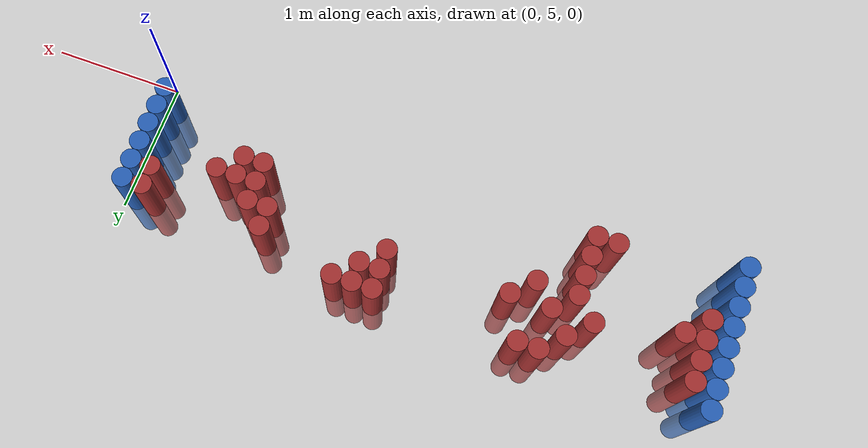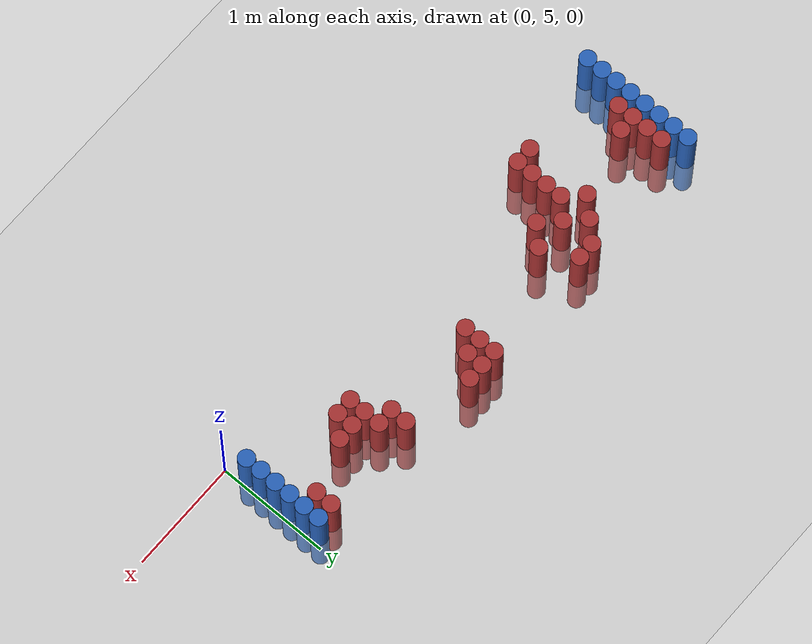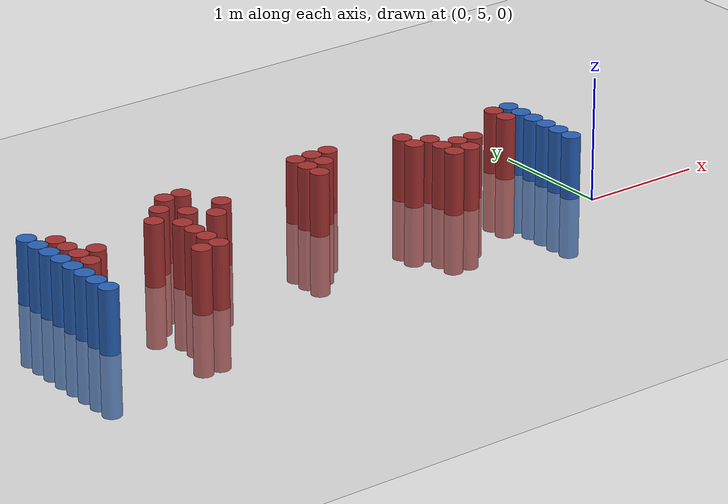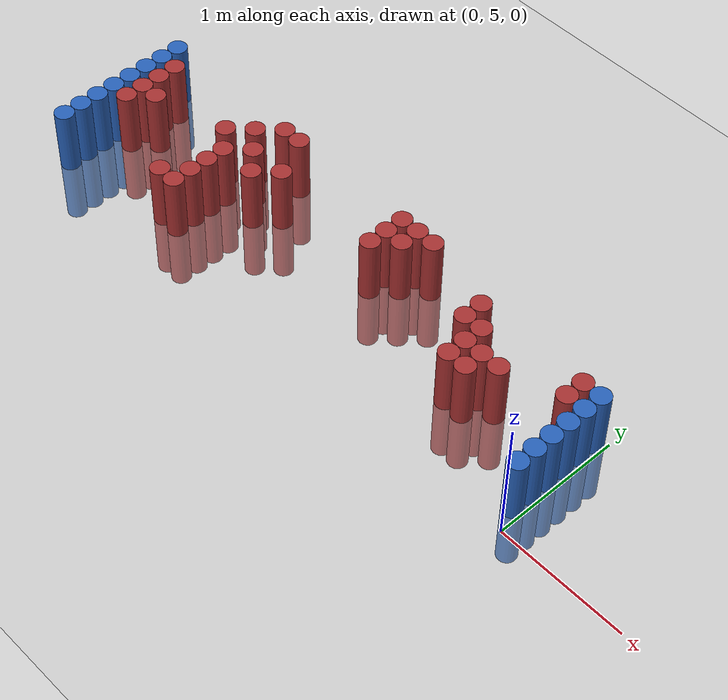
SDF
<sdf version="1.6">
 <world name="default">
  <model name="ground_plane">
   <static>1</static>
   <link name="link">
    <collision name="collision">
     <geometry><plane><normal>0 0 1</normal><size>100 100</size></plane></geometry>
     <surface><friction><ode><mu>100</mu><mu2>50</mu2></ode></friction></surface>
    </collision>
    <visual name="visual">
     <cast_shadows>0</cast_shadows>
     <geometry><plane><normal>0 0 1</normal><size>100 100</size></plane></geometry>
     <material>
      <script><uri>file://media/materials/scripts/gazebo.material</uri><name>Gazebo/Grey</name></script>
     </material>
    </visual>
   </link>
  </model>
  <model name="unit_cylinder_95">
   <static>1</static>
   <pose>-4.425000 5.025000 0.000000 0.000000 0.000000 0.000000</pose>
   <link name="link">
    <inertial>
     <mass>1</mass>
     <inertia><ixx>0.145833</ixx><ixy>0</ixy><ixz>0</ixz><iyy>0.145833</iyy><iyz>0</iyz><izz>0.125</izz></inertia>
    </inertial>
    <collision name="collision">
     <geometry><cylinder><radius>0.075000</radius><length>1</length></cylinder></geometry>
    </collision>
    <visual name="visual">
     <geometry><cylinder><radius>0.075000</radius><length>1</length></cylinder></geometry>
     <material>
      <ambient>0.152000 0.379000 0.720000 1</ambient>
      <diffuse>0.152000 0.379000 0.720000 1</diffuse>
     </material>
     <material>
      <script><name>Gazebo/Grey</name><uri>file://media/materials/scripts/gazebo.material</uri></script>
     </material>
    </visual>
   </link>
  </model>
  <model name="unit_cylinder_96">
   <static>1</static>
   <pose>-4.425000 5.175000 0.000000 0.000000 0.000000 0.000000</pose>
   <link name="link">
    <inertial>
     <mass>1</mass>
     <inertia><ixx>0.145833</ixx><ixy>0</ixy><ixz>0</ixz><iyy>0.145833</iyy><iyz>0</iyz><izz>0.125</izz></inertia>
    </inertial>
    <collision name="collision">
     <geometry><cylinder><radius>0.075000</radius><length>1</length></cylinder></geometry>
    </collision>
    <visual name="visual">
     <geometry><cylinder><radius>0.075000</radius><length>1</length></cylinder></geometry>
     <material>
      <ambient>0.152000 0.379000 0.720000 1</ambient>
      <diffuse>0.152000 0.379000 0.720000 1</diffuse>
     </material>
     <material>
      <script><name>Gazebo/Grey</name><uri>file://media/materials/scripts/gazebo.material</uri></script>
     </material>
    </visual>
   </link>
  </model>
  <model name="unit_cylinder_97">
   <static>1</static>
   <pose>-4.425000 5.325000 0.000000 0.000000 0.000000 0.000000</pose>
   <link name="link">
    <inertial>
     <mass>1</mass>
     <inertia><ixx>0.145833</ixx><ixy>0</ixy><ixz>0</ixz><iyy>0.145833</iyy><iyz>0</iyz><izz>0.125</izz></inertia>
    </inertial>
    <collision name="collision">
     <geometry><cylinder><radius>0.075000</radius><length>1</length></cylinder></geometry>
    </collision>
    <visual name="visual">
     <geometry><cylinder><radius>0.075000</radius><length>1</length></cylinder></geometry>
     <material>
      <ambient>0.152000 0.379000 0.720000 1</ambient>
      <diffuse>0.152000 0.379000 0.720000 1</diffuse>
     </material>
     <material>
      <script><name>Gazebo/Grey</name><uri>file://media/materials/scripts/gazebo.material</uri></script>
     </material>
    </visual>
   </link>
  </model>
  <model name="unit_cylinder_98">
   <static>1</static>
   <pose>-4.425000 5.475000 0.000000 0.000000 0.000000 0.000000</pose>
   <link name="link">
    <inertial>
     <mass>1</mass>
     <inertia><ixx>0.145833</ixx><ixy>0</ixy><ixz>0</ixz><iyy>0.145833</iyy><iyz>0</iyz><izz>0.125</izz></inertia>
    </inertial>
    <collision name="collision">
     <geometry><cylinder><radius>0.075000</radius><length>1</length></cylinder></geometry>
    </collision>
    <visual name="visual">
     <geometry><cylinder><radius>0.075000</radius><length>1</length></cylinder></geometry>
     <material>
      <ambient>0.152000 0.379000 0.720000 1</ambient>
      <diffuse>0.152000 0.379000 0.720000 1</diffuse>
     </material>
     <material>
      <script><name>Gazebo/Grey</name><uri>file://media/materials/scripts/gazebo.material</uri></script>
     </material>
    </visual>
   </link>
  </model>
  <model name="unit_cylinder_99">
   <static>1</static>
   <pose>-4.425000 5.625000 0.000000 0.000000 0.000000 0.000000</pose>
   <link name="link">
    <inertial>
     <mass>1</mass>
     <inertia><ixx>0.145833</ixx><ixy>0</ixy><ixz>0</ixz><iyy>0.145833</iyy><iyz>0</iyz><izz>0.125</izz></inertia>
    </inertial>
    <collision name="collision">
     <geometry><cylinder><radius>0.075000</radius><length>1</length></cylinder></geometry>
    </collision>
    <visual name="visual">
     <geometry><cylinder><radius>0.075000</radius><length>1</length></cylinder></geometry>
     <material>
      <ambient>0.152000 0.379000 0.720000 1</ambient>
      <diffuse>0.152000 0.379000 0.720000 1</diffuse>
     </material>
     <material>
      <script><name>Gazebo/Grey</name><uri>file://media/materials/scripts/gazebo.material</uri></script>
     </material>
    </visual>
   </link>
  </model>
  <model name="unit_cylinder_100">
   <static>1</static>
   <pose>-4.425000 5.775000 0.000000 0.000000 0.000000 0.000000</pose>
   <link name="link">
    <inertial>
     <mass>1</mass>
     <inertia><ixx>0.145833</ixx><ixy>0</ixy><ixz>0</ixz><iyy>0.145833</iyy><iyz>0</iyz><izz>0.125</izz></inertia>
    </inertial>
    <collision name="collision">
     <geometry><cylinder><radius>0.075000</radius><length>1</length></cylinder></geometry>
    </collision>
    <visual name="visual">
     <geometry><cylinder><radius>0.075000</radius><length>1</length></cylinder></geometry>
     <material>
      <ambient>0.152000 0.379000 0.720000 1</ambient>
      <diffuse>0.152000 0.379000 0.720000 1</diffuse>
     </material>
     <material>
      <script><name>Gazebo/Grey</name><uri>file://media/materials/scripts/gazebo.material</uri></script>
     </material>
    </visual>
   </link>
  </model>
  <model name="unit_cylinder_101">
   <static>1</static>
   <pose>-4.425000 5.925000 0.000000 0.000000 0.000000 0.000000</pose>
   <link name="link">
    <inertial>
     <mass>1</mass>
     <inertia><ixx>0.145833</ixx><ixy>0</ixy><ixz>0</ixz><iyy>0.145833</iyy><iyz>0</iyz><izz>0.125</izz></inertia>
    </inertial>
    <collision name="collision">
     <geometry><cylinder><radius>0.075000</radius><length>1</length></cylinder></geometry>
    </collision>
    <visual name="visual">
     <geometry><cylinder><radius>0.075000</radius><length>1</length></cylinder></geometry>
     <material>
      <ambient>0.152000 0.379000 0.720000 1</ambient>
      <diffuse>0.152000 0.379000 0.720000 1</diffuse>
     </material>
     <material>
      <script><name>Gazebo/Grey</name><uri>file://media/materials/scripts/gazebo.material</uri></script>
     </material>
    </visual>
   </link>
  </model>
  <model name="unit_cylinder_102">
   <static>1</static>
   <pose>-4.425000 6.075000 0.000000 0.000000 0.000000 0.000000</pose>
   <link name="link">
    <inertial>
     <mass>1</mass>
     <inertia><ixx>0.145833</ixx><ixy>0</ixy><ixz>0</ixz><iyy>0.145833</iyy><iyz>0</iyz><izz>0.125</izz></inertia>
    </inertial>
    <collision name="collision">
     <geometry><cylinder><radius>0.075000</radius><length>1</length></cylinder></geometry>
    </collision>
    <visual name="visual">
     <geometry><cylinder><radius>0.075000</radius><length>1</length></cylinder></geometry>
     <material>
      <ambient>0.152000 0.379000 0.720000 1</ambient>
      <diffuse>0.152000 0.379000 0.720000 1</diffuse>
     </material>
     <material>
      <script><name>Gazebo/Grey</name><uri>file://media/materials/scripts/gazebo.material</uri></script>
     </material>
    </visual>
   </link>
  </model>
  <model name="unit_cylinder_126">
   <static>1</static>
   <pose>-4.275000 5.475000 0.000000 0.000000 0.000000 0.000000</pose>
   <link name="link">
    <inertial>
     <mass>1</mass>
     <inertia><ixx>0.145833</ixx><ixy>0</ixy><ixz>0</ixz><iyy>0.145833</iyy><iyz>0</iyz><izz>0.125</izz></inertia>
    </inertial>
    <collision name="collision">
     <geometry><cylinder><radius>0.075000</radius><length>1</length></cylinder></geometry>
    </collision>
    <visual name="visual">
     <geometry><cylinder><radius>0.075000</radius><length>1</length></cylinder></geometry>
     <material>
      <ambient>0.648000 0.192000 0.192000 1</ambient>
      <diffuse>0.648000 0.192000 0.192000 1</diffuse>
     </material>
     <material>
      <script><name>Gazebo/Grey</name><uri>file://media/materials/scripts/gazebo.material</uri></script>
     </material>
    </visual>
   </link>
  </model>
  <model name="unit_cylinder_127">
   <static>1</static>
   <pose>-4.275000 5.625000 0.000000 0.000000 0.000000 0.000000</pose>
   <link name="link">
    <inertial>
     <mass>1</mass>
     <inertia><ixx>0.145833</ixx><ixy>0</ixy><ixz>0</ixz><iyy>0.145833</iyy><iyz>0</iyz><izz>0.125</izz></inertia>
    </inertial>
    <collision name="collision">
     <geometry><cylinder><radius>0.075000</radius><length>1</length></cylinder></geometry>
    </collision>
    <visual name="visual">
     <geometry><cylinder><radius>0.075000</radius><length>1</length></cylinder></geometry>
     <material>
      <ambient>0.648000 0.192000 0.192000 1</ambient>
      <diffuse>0.648000 0.192000 0.192000 1</diffuse>
     </material>
     <material>
      <script><name>Gazebo/Grey</name><uri>file://media/materials/scripts/gazebo.material</uri></script>
     </material>
    </visual>
   </link>
  </model>
  <model name="unit_cylinder_128">
   <static>1</static>
   <pose>-4.275000 5.775000 0.000000 0.000000 0.000000 0.000000</pose>
   <link name="link">
    <inertial>
     <mass>1</mass>
     <inertia><ixx>0.145833</ixx><ixy>0</ixy><ixz>0</ixz><iyy>0.145833</iyy><iyz>0</iyz><izz>0.125</izz></inertia>
    </inertial>
    <collision name="collision">
     <geometry><cylinder><radius>0.075000</radius><length>1</length></cylinder></geometry>
    </collision>
    <visual name="visual">
     <geometry><cylinder><radius>0.075000</radius><length>1</length></cylinder></geometry>
     <material>
      <ambient>0.648000 0.192000 0.192000 1</ambient>
      <diffuse>0.648000 0.192000 0.192000 1</diffuse>
     </material>
     <material>
      <script><name>Gazebo/Grey</name><uri>file://media/materials/scripts/gazebo.material</uri></script>
     </material>
    </visual>
   </link>
  </model>
  <model name="unit_cylinder_129">
   <static>1</static>
   <pose>-4.275000 5.925000 0.000000 0.000000 0.000000 0.000000</pose>
   <link name="link">
    <inertial>
     <mass>1</mass>
     <inertia><ixx>0.145833</ixx><ixy>0</ixy><ixz>0</ixz><iyy>0.145833</iyy><iyz>0</iyz><izz>0.125</izz></inertia>
    </inertial>
    <collision name="collision">
     <geometry><cylinder><radius>0.075000</radius><length>1</length></cylinder></geometry>
    </collision>
    <visual name="visual">
     <geometry><cylinder><radius>0.075000</radius><length>1</length></cylinder></geometry>
     <material>
      <ambient>0.648000 0.192000 0.192000 1</ambient>
      <diffuse>0.648000 0.192000 0.192000 1</diffuse>
     </material>
     <material>
      <script><name>Gazebo/Grey</name><uri>file://media/materials/scripts/gazebo.material</uri></script>
     </material>
    </visual>
   </link>
  </model>
  <model name="unit_cylinder_142">
   <static>1</static>
   <pose>-4.125000 5.625000 0.000000 0.000000 0.000000 0.000000</pose>
   <link name="link">
    <inertial>
     <mass>1</mass>
     <inertia><ixx>0.145833</ixx><ixy>0</ixy><ixz>0</ixz><iyy>0.145833</iyy><iyz>0</iyz><izz>0.125</izz></inertia>
    </inertial>
    <collision name="collision">
     <geometry><cylinder><radius>0.075000</radius><length>1</length></cylinder></geometry>
    </collision>
    <visual name="visual">
     <geometry><cylinder><radius>0.075000</radius><length>1</length></cylinder></geometry>
     <material>
      <ambient>0.648000 0.192000 0.192000 1</ambient>
      <diffuse>0.648000 0.192000 0.192000 1</diffuse>
     </material>
     <material>
      <script><name>Gazebo/Grey</name><uri>file://media/materials/scripts/gazebo.material</uri></script>
     </material>
    </visual>
   </link>
  </model>
  <model name="unit_cylinder_158">
   <static>1</static>
   <pose>-3.525000 5.175000 0.000000 0.000000 0.000000 0.000000</pose>
   <link name="link">
    <inertial>
     <mass>1</mass>
     <inertia><ixx>0.145833</ixx><ixy>0</ixy><ixz>0</ixz><iyy>0.145833</iyy><iyz>0</iyz><izz>0.125</izz></inertia>
    </inertial>
    <collision name="collision">
     <geometry><cylinder><radius>0.075000</radius><length>1</length></cylinder></geometry>
    </collision>
    <visual name="visual">
     <geometry><cylinder><radius>0.075000</radius><length>1</length></cylinder></geometry>
     <material>
      <ambient>0.648000 0.192000 0.192000 1</ambient>
      <diffuse>0.648000 0.192000 0.192000 1</diffuse>
     </material>
     <material>
      <script><name>Gazebo/Grey</name><uri>file://media/materials/scripts/gazebo.material</uri></script>
     </material>
    </visual>
   </link>
  </model>
  <model name="unit_cylinder_159">
   <static>1</static>
   <pose>-3.525000 5.775000 0.000000 0.000000 0.000000 0.000000</pose>
   <link name="link">
    <inertial>
     <mass>1</mass>
     <inertia><ixx>0.145833</ixx><ixy>0</ixy><ixz>0</ixz><iyy>0.145833</iyy><iyz>0</iyz><izz>0.125</izz></inertia>
    </inertial>
    <collision name="collision">
     <geometry><cylinder><radius>0.075000</radius><length>1</length></cylinder></geometry>
    </collision>
    <visual name="visual">
     <geometry><cylinder><radius>0.075000</radius><length>1</length></cylinder></geometry>
     <material>
      <ambient>0.648000 0.192000 0.192000 1</ambient>
      <diffuse>0.648000 0.192000 0.192000 1</diffuse>
     </material>
     <material>
      <script><name>Gazebo/Grey</name><uri>file://media/materials/scripts/gazebo.material</uri></script>
     </material>
    </visual>
   </link>
  </model>
  <model name="unit_cylinder_166">
   <static>1</static>
   <pose>-3.375000 5.175000 0.000000 0.000000 0.000000 0.000000</pose>
   <link name="link">
    <inertial>
     <mass>1</mass>
     <inertia><ixx>0.145833</ixx><ixy>0</ixy><ixz>0</ixz><iyy>0.145833</iyy><iyz>0</iyz><izz>0.125</izz></inertia>
    </inertial>
    <collision name="collision">
     <geometry><cylinder><radius>0.075000</radius><length>1</length></cylinder></geometry>
    </collision>
    <visual name="visual">
     <geometry><cylinder><radius>0.075000</radius><length>1</length></cylinder></geometry>
     <material>
      <ambient>0.648000 0.192000 0.192000 1</ambient>
      <diffuse>0.648000 0.192000 0.192000 1</diffuse>
     </material>
     <material>
      <script><name>Gazebo/Grey</name><uri>file://media/materials/scripts/gazebo.material</uri></script>
     </material>
    </visual>
   </link>
  </model>
  <model name="unit_cylinder_167">
   <static>1</static>
   <pose>-3.375000 5.325000 0.000000 0.000000 0.000000 0.000000</pose>
   <link name="link">
    <inertial>
     <mass>1</mass>
     <inertia><ixx>0.145833</ixx><ixy>0</ixy><ixz>0</ixz><iyy>0.145833</iyy><iyz>0</iyz><izz>0.125</izz></inertia>
    </inertial>
    <collision name="collision">
     <geometry><cylinder><radius>0.075000</radius><length>1</length></cylinder></geometry>
    </collision>
    <visual name="visual">
     <geometry><cylinder><radius>0.075000</radius><length>1</length></cylinder></geometry>
     <material>
      <ambient>0.648000 0.192000 0.192000 1</ambient>
      <diffuse>0.648000 0.192000 0.192000 1</diffuse>
     </material>
     <material>
      <script><name>Gazebo/Grey</name><uri>file://media/materials/scripts/gazebo.material</uri></script>
     </material>
    </visual>
   </link>
  </model>
  <model name="unit_cylinder_168">
   <static>1</static>
   <pose>-3.375000 5.475000 0.000000 0.000000 0.000000 0.000000</pose>
   <link name="link">
    <inertial>
     <mass>1</mass>
     <inertia><ixx>0.145833</ixx><ixy>0</ixy><ixz>0</ixz><iyy>0.145833</iyy><iyz>0</iyz><izz>0.125</izz></inertia>
    </inertial>
    <collision name="collision">
     <geometry><cylinder><radius>0.075000</radius><length>1</length></cylinder></geometry>
    </collision>
    <visual name="visual">
     <geometry><cylinder><radius>0.075000</radius><length>1</length></cylinder></geometry>
     <material>
      <ambient>0.648000 0.192000 0.192000 1</ambient>
      <diffuse>0.648000 0.192000 0.192000 1</diffuse>
     </material>
     <material>
      <script><name>Gazebo/Grey</name><uri>file://media/materials/scripts/gazebo.material</uri></script>
     </material>
    </visual>
   </link>
  </model>
  <model name="unit_cylinder_169">
   <static>1</static>
   <pose>-3.375000 5.625000 0.000000 0.000000 0.000000 0.000000</pose>
   <link name="link">
    <inertial>
     <mass>1</mass>
     <inertia><ixx>0.145833</ixx><ixy>0</ixy><ixz>0</ixz><iyy>0.145833</iyy><iyz>0</iyz><izz>0.125</izz></inertia>
    </inertial>
    <collision name="collision">
     <geometry><cylinder><radius>0.075000</radius><length>1</length></cylinder></geometry>
    </collision>
    <visual name="visual">
     <geometry><cylinder><radius>0.075000</radius><length>1</length></cylinder></geometry>
     <material>
      <ambient>0.648000 0.192000 0.192000 1</ambient>
      <diffuse>0.648000 0.192000 0.192000 1</diffuse>
     </material>
     <material>
      <script><name>Gazebo/Grey</name><uri>file://media/materials/scripts/gazebo.material</uri></script>
     </material>
    </visual>
   </link>
  </model>
  <model name="unit_cylinder_170">
   <static>1</static>
   <pose>-3.375000 5.925000 0.000000 0.000000 0.000000 0.000000</pose>
   <link name="link">
    <inertial>
     <mass>1</mass>
     <inertia><ixx>0.145833</ixx><ixy>0</ixy><ixz>0</ixz><iyy>0.145833</iyy><iyz>0</iyz><izz>0.125</izz></inertia>
    </inertial>
    <collision name="collision">
     <geometry><cylinder><radius>0.075000</radius><length>1</length></cylinder></geometry>
    </collision>
    <visual name="visual">
     <geometry><cylinder><radius>0.075000</radius><length>1</length></cylinder></geometry>
     <material>
      <ambient>0.648000 0.192000 0.192000 1</ambient>
      <diffuse>0.648000 0.192000 0.192000 1</diffuse>
     </material>
     <material>
      <script><name>Gazebo/Grey</name><uri>file://media/materials/scripts/gazebo.material</uri></script>
     </material>
    </visual>
   </link>
  </model>
  <model name="unit_cylinder_179">
   <static>1</static>
   <pose>-3.225000 5.775000 0.000000 0.000000 0.000000 0.000000</pose>
   <link name="link">
    <inertial>
     <mass>1</mass>
     <inertia><ixx>0.145833</ixx><ixy>0</ixy><ixz>0</ixz><iyy>0.145833</iyy><iyz>0</iyz><izz>0.125</izz></inertia>
    </inertial>
    <collision name="collision">
     <geometry><cylinder><radius>0.075000</radius><length>1</length></cylinder></geometry>
    </collision>
    <visual name="visual">
     <geometry><cylinder><radius>0.075000</radius><length>1</length></cylinder></geometry>
     <material>
      <ambient>0.648000 0.192000 0.192000 1</ambient>
      <diffuse>0.648000 0.192000 0.192000 1</diffuse>
     </material>
     <material>
      <script><name>Gazebo/Grey</name><uri>file://media/materials/scripts/gazebo.material</uri></script>
     </material>
    </visual>
   </link>
  </model>
  <model name="unit_cylinder_180">
   <static>1</static>
   <pose>-3.225000 6.075000 0.000000 0.000000 0.000000 0.000000</pose>
   <link name="link">
    <inertial>
     <mass>1</mass>
     <inertia><ixx>0.145833</ixx><ixy>0</ixy><ixz>0</ixz><iyy>0.145833</iyy><iyz>0</iyz><izz>0.125</izz></inertia>
    </inertial>
    <collision name="collision">
     <geometry><cylinder><radius>0.075000</radius><length>1</length></cylinder></geometry>
    </collision>
    <visual name="visual">
     <geometry><cylinder><radius>0.075000</radius><length>1</length></cylinder></geometry>
     <material>
      <ambient>0.648000 0.192000 0.192000 1</ambient>
      <diffuse>0.648000 0.192000 0.192000 1</diffuse>
     </material>
     <material>
      <script><name>Gazebo/Grey</name><uri>file://media/materials/scripts/gazebo.material</uri></script>
     </material>
    </visual>
   </link>
  </model>
  <model name="unit_cylinder_188">
   <static>1</static>
   <pose>-3.075000 5.625000 0.000000 0.000000 0.000000 0.000000</pose>
   <link name="link">
    <inertial>
     <mass>1</mass>
     <inertia><ixx>0.145833</ixx><ixy>0</ixy><ixz>0</ixz><iyy>0.145833</iyy><iyz>0</iyz><izz>0.125</izz></inertia>
    </inertial>
    <collision name="collision">
     <geometry><cylinder><radius>0.075000</radius><length>1</length></cylinder></geometry>
    </collision>
    <visual name="visual">
     <geometry><cylinder><radius>0.075000</radius><length>1</length></cylinder></geometry>
     <material>
      <ambient>0.648000 0.192000 0.192000 1</ambient>
      <diffuse>0.648000 0.192000 0.192000 1</diffuse>
     </material>
     <material>
      <script><name>Gazebo/Grey</name><uri>file://media/materials/scripts/gazebo.material</uri></script>
     </material>
    </visual>
   </link>
  </model>
  <model name="unit_cylinder_189">
   <static>1</static>
   <pose>-3.075000 6.075000 0.000000 0.000000 0.000000 0.000000</pose>
   <link name="link">
    <inertial>
     <mass>1</mass>
     <inertia><ixx>0.145833</ixx><ixy>0</ixy><ixz>0</ixz><iyy>0.145833</iyy><iyz>0</iyz><izz>0.125</izz></inertia>
    </inertial>
    <collision name="collision">
     <geometry><cylinder><radius>0.075000</radius><length>1</length></cylinder></geometry>
    </collision>
    <visual name="visual">
     <geometry><cylinder><radius>0.075000</radius><length>1</length></cylinder></geometry>
     <material>
      <ambient>0.648000 0.192000 0.192000 1</ambient>
      <diffuse>0.648000 0.192000 0.192000 1</diffuse>
     </material>
     <material>
      <script><name>Gazebo/Grey</name><uri>file://media/materials/scripts/gazebo.material</uri></script>
     </material>
    </visual>
   </link>
  </model>
  <model name="unit_cylinder_195">
   <static>1</static>
   <pose>-2.925000 5.775000 0.000000 0.000000 0.000000 0.000000</pose>
   <link name="link">
    <inertial>
     <mass>1</mass>
     <inertia><ixx>0.145833</ixx><ixy>0</ixy><ixz>0</ixz><iyy>0.145833</iyy><iyz>0</iyz><izz>0.125</izz></inertia>
    </inertial>
    <collision name="collision">
     <geometry><cylinder><radius>0.075000</radius><length>1</length></cylinder></geometry>
    </collision>
    <visual name="visual">
     <geometry><cylinder><radius>0.075000</radius><length>1</length></cylinder></geometry>
     <material>
      <ambient>0.648000 0.192000 0.192000 1</ambient>
      <diffuse>0.648000 0.192000 0.192000 1</diffuse>
     </material>
     <material>
      <script><name>Gazebo/Grey</name><uri>file://media/materials/scripts/gazebo.material</uri></script>
     </material>
    </visual>
   </link>
  </model>
  <model name="unit_cylinder_206">
   <static>1</static>
   <pose>-2.025000 5.775000 0.000000 0.000000 0.000000 0.000000</pose>
   <link name="link">
    <inertial>
     <mass>1</mass>
     <inertia><ixx>0.145833</ixx><ixy>0</ixy><ixz>0</ixz><iyy>0.145833</iyy><iyz>0</iyz><izz>0.125</izz></inertia>
    </inertial>
    <collision name="collision">
     <geometry><cylinder><radius>0.075000</radius><length>1</length></cylinder></geometry>
    </collision>
    <visual name="visual">
     <geometry><cylinder><radius>0.075000</radius><length>1</length></cylinder></geometry>
     <material>
      <ambient>0.648000 0.192000 0.192000 1</ambient>
      <diffuse>0.648000 0.192000 0.192000 1</diffuse>
     </material>
     <material>
      <script><name>Gazebo/Grey</name><uri>file://media/materials/scripts/gazebo.material</uri></script>
     </material>
    </visual>
   </link>
  </model>
  <model name="unit_cylinder_207">
   <static>1</static>
   <pose>-2.025000 5.925000 0.000000 0.000000 0.000000 0.000000</pose>
   <link name="link">
    <inertial>
     <mass>1</mass>
     <inertia><ixx>0.145833</ixx><ixy>0</ixy><ixz>0</ixz><iyy>0.145833</iyy><iyz>0</iyz><izz>0.125</izz></inertia>
    </inertial>
    <collision name="collision">
     <geometry><cylinder><radius>0.075000</radius><length>1</length></cylinder></geometry>
    </collision>
    <visual name="visual">
     <geometry><cylinder><radius>0.075000</radius><length>1</length></cylinder></geometry>
     <material>
      <ambient>0.648000 0.192000 0.192000 1</ambient>
      <diffuse>0.648000 0.192000 0.192000 1</diffuse>
     </material>
     <material>
      <script><name>Gazebo/Grey</name><uri>file://media/materials/scripts/gazebo.material</uri></script>
     </material>
    </visual>
   </link>
  </model>
  <model name="unit_cylinder_208">
   <static>1</static>
   <pose>-2.025000 6.075000 0.000000 0.000000 0.000000 0.000000</pose>
   <link name="link">
    <inertial>
     <mass>1</mass>
     <inertia><ixx>0.145833</ixx><ixy>0</ixy><ixz>0</ixz><iyy>0.145833</iyy><iyz>0</iyz><izz>0.125</izz></inertia>
    </inertial>
    <collision name="collision">
     <geometry><cylinder><radius>0.075000</radius><length>1</length></cylinder></geometry>
    </collision>
    <visual name="visual">
     <geometry><cylinder><radius>0.075000</radius><length>1</length></cylinder></geometry>
     <material>
      <ambient>0.648000 0.192000 0.192000 1</ambient>
      <diffuse>0.648000 0.192000 0.192000 1</diffuse>
     </material>
     <material>
      <script><name>Gazebo/Grey</name><uri>file://media/materials/scripts/gazebo.material</uri></script>
     </material>
    </visual>
   </link>
  </model>
  <model name="unit_cylinder_209">
   <static>1</static>
   <pose>-1.875000 5.925000 0.000000 0.000000 0.000000 0.000000</pose>
   <link name="link">
    <inertial>
     <mass>1</mass>
     <inertia><ixx>0.145833</ixx><ixy>0</ixy><ixz>0</ixz><iyy>0.145833</iyy><iyz>0</iyz><izz>0.125</izz></inertia>
    </inertial>
    <collision name="collision">
     <geometry><cylinder><radius>0.075000</radius><length>1</length></cylinder></geometry>
    </collision>
    <visual name="visual">
     <geometry><cylinder><radius>0.075000</radius><length>1</length></cylinder></geometry>
     <material>
      <ambient>0.648000 0.192000 0.192000 1</ambient>
      <diffuse>0.648000 0.192000 0.192000 1</diffuse>
     </material>
     <material>
      <script><name>Gazebo/Grey</name><uri>file://media/materials/scripts/gazebo.material</uri></script>
     </material>
    </visual>
   </link>
  </model>
  <model name="unit_cylinder_210">
   <static>1</static>
   <pose>-1.875000 6.075000 0.000000 0.000000 0.000000 0.000000</pose>
   <link name="link">
    <inertial>
     <mass>1</mass>
     <inertia><ixx>0.145833</ixx><ixy>0</ixy><ixz>0</ixz><iyy>0.145833</iyy><iyz>0</iyz><izz>0.125</izz></inertia>
    </inertial>
    <collision name="collision">
     <geometry><cylinder><radius>0.075000</radius><length>1</length></cylinder></geometry>
    </collision>
    <visual name="visual">
     <geometry><cylinder><radius>0.075000</radius><length>1</length></cylinder></geometry>
     <material>
      <ambient>0.648000 0.192000 0.192000 1</ambient>
      <diffuse>0.648000 0.192000 0.192000 1</diffuse>
     </material>
     <material>
      <script><name>Gazebo/Grey</name><uri>file://media/materials/scripts/gazebo.material</uri></script>
     </material>
    </visual>
   </link>
  </model>
  <model name="unit_cylinder_215">
   <static>1</static>
   <pose>-1.725000 6.075000 0.000000 0.000000 0.000000 0.000000</pose>
   <link name="link">
    <inertial>
     <mass>1</mass>
     <inertia><ixx>0.145833</ixx><ixy>0</ixy><ixz>0</ixz><iyy>0.145833</iyy><iyz>0</iyz><izz>0.125</izz></inertia>
    </inertial>
    <collision name="collision">
     <geometry><cylinder><radius>0.075000</radius><length>1</length></cylinder></geometry>
    </collision>
    <visual name="visual">
     <geometry><cylinder><radius>0.075000</radius><length>1</length></cylinder></geometry>
     <material>
      <ambient>0.648000 0.192000 0.192000 1</ambient>
      <diffuse>0.648000 0.192000 0.192000 1</diffuse>
     </material>
     <material>
      <script><name>Gazebo/Grey</name><uri>file://media/materials/scripts/gazebo.material</uri></script>
     </material>
    </visual>
   </link>
  </model>
  <model name="unit_cylinder_239">
   <static>1</static>
   <pose>-1.125000 5.775000 0.000000 0.000000 0.000000 0.000000</pose>
   <link name="link">
    <inertial>
     <mass>1</mass>
     <inertia><ixx>0.145833</ixx><ixy>0</ixy><ixz>0</ixz><iyy>0.145833</iyy><iyz>0</iyz><izz>0.125</izz></inertia>
    </inertial>
    <collision name="collision">
     <geometry><cylinder><radius>0.075000</radius><length>1</length></cylinder></geometry>
    </collision>
    <visual name="visual">
     <geometry><cylinder><radius>0.075000</radius><length>1</length></cylinder></geometry>
     <material>
      <ambient>0.648000 0.192000 0.192000 1</ambient>
      <diffuse>0.648000 0.192000 0.192000 1</diffuse>
     </material>
     <material>
      <script><name>Gazebo/Grey</name><uri>file://media/materials/scripts/gazebo.material</uri></script>
     </material>
    </visual>
   </link>
  </model>
  <model name="unit_cylinder_240">
   <static>1</static>
   <pose>-1.125000 5.925000 0.000000 0.000000 0.000000 0.000000</pose>
   <link name="link">
    <inertial>
     <mass>1</mass>
     <inertia><ixx>0.145833</ixx><ixy>0</ixy><ixz>0</ixz><iyy>0.145833</iyy><iyz>0</iyz><izz>0.125</izz></inertia>
    </inertial>
    <collision name="collision">
     <geometry><cylinder><radius>0.075000</radius><length>1</length></cylinder></geometry>
    </collision>
    <visual name="visual">
     <geometry><cylinder><radius>0.075000</radius><length>1</length></cylinder></geometry>
     <material>
      <ambient>0.648000 0.192000 0.192000 1</ambient>
      <diffuse>0.648000 0.192000 0.192000 1</diffuse>
     </material>
     <material>
      <script><name>Gazebo/Grey</name><uri>file://media/materials/scripts/gazebo.material</uri></script>
     </material>
    </visual>
   </link>
  </model>
  <model name="unit_cylinder_249">
   <static>1</static>
   <pose>-0.975000 5.475000 0.000000 0.000000 0.000000 0.000000</pose>
   <link name="link">
    <inertial>
     <mass>1</mass>
     <inertia><ixx>0.145833</ixx><ixy>0</ixy><ixz>0</ixz><iyy>0.145833</iyy><iyz>0</iyz><izz>0.125</izz></inertia>
    </inertial>
    <collision name="collision">
     <geometry><cylinder><radius>0.075000</radius><length>1</length></cylinder></geometry>
    </collision>
    <visual name="visual">
     <geometry><cylinder><radius>0.075000</radius><length>1</length></cylinder></geometry>
     <material>
      <ambient>0.648000 0.192000 0.192000 1</ambient>
      <diffuse>0.648000 0.192000 0.192000 1</diffuse>
     </material>
     <material>
      <script><name>Gazebo/Grey</name><uri>file://media/materials/scripts/gazebo.material</uri></script>
     </material>
    </visual>
   </link>
  </model>
  <model name="unit_cylinder_250">
   <static>1</static>
   <pose>-0.975000 5.625000 0.000000 0.000000 0.000000 0.000000</pose>
   <link name="link">
    <inertial>
     <mass>1</mass>
     <inertia><ixx>0.145833</ixx><ixy>0</ixy><ixz>0</ixz><iyy>0.145833</iyy><iyz>0</iyz><izz>0.125</izz></inertia>
    </inertial>
    <collision name="collision">
     <geometry><cylinder><radius>0.075000</radius><length>1</length></cylinder></geometry>
    </collision>
    <visual name="visual">
     <geometry><cylinder><radius>0.075000</radius><length>1</length></cylinder></geometry>
     <material>
      <ambient>0.648000 0.192000 0.192000 1</ambient>
      <diffuse>0.648000 0.192000 0.192000 1</diffuse>
     </material>
     <material>
      <script><name>Gazebo/Grey</name><uri>file://media/materials/scripts/gazebo.material</uri></script>
     </material>
    </visual>
   </link>
  </model>
  <model name="unit_cylinder_251">
   <static>1</static>
   <pose>-0.975000 5.775000 0.000000 0.000000 0.000000 0.000000</pose>
   <link name="link">
    <inertial>
     <mass>1</mass>
     <inertia><ixx>0.145833</ixx><ixy>0</ixy><ixz>0</ixz><iyy>0.145833</iyy><iyz>0</iyz><izz>0.125</izz></inertia>
    </inertial>
    <collision name="collision">
     <geometry><cylinder><radius>0.075000</radius><length>1</length></cylinder></geometry>
    </collision>
    <visual name="visual">
     <geometry><cylinder><radius>0.075000</radius><length>1</length></cylinder></geometry>
     <material>
      <ambient>0.648000 0.192000 0.192000 1</ambient>
      <diffuse>0.648000 0.192000 0.192000 1</diffuse>
     </material>
     <material>
      <script><name>Gazebo/Grey</name><uri>file://media/materials/scripts/gazebo.material</uri></script>
     </material>
    </visual>
   </link>
  </model>
  <model name="unit_cylinder_258">
   <static>1</static>
   <pose>-0.825000 5.475000 0.000000 0.000000 0.000000 0.000000</pose>
   <link name="link">
    <inertial>
     <mass>1</mass>
     <inertia><ixx>0.145833</ixx><ixy>0</ixy><ixz>0</ixz><iyy>0.145833</iyy><iyz>0</iyz><izz>0.125</izz></inertia>
    </inertial>
    <collision name="collision">
     <geometry><cylinder><radius>0.075000</radius><length>1</length></cylinder></geometry>
    </collision>
    <visual name="visual">
     <geometry><cylinder><radius>0.075000</radius><length>1</length></cylinder></geometry>
     <material>
      <ambient>0.648000 0.192000 0.192000 1</ambient>
      <diffuse>0.648000 0.192000 0.192000 1</diffuse>
     </material>
     <material>
      <script><name>Gazebo/Grey</name><uri>file://media/materials/scripts/gazebo.material</uri></script>
     </material>
    </visual>
   </link>
  </model>
  <model name="unit_cylinder_259">
   <static>1</static>
   <pose>-0.825000 5.625000 0.000000 0.000000 0.000000 0.000000</pose>
   <link name="link">
    <inertial>
     <mass>1</mass>
     <inertia><ixx>0.145833</ixx><ixy>0</ixy><ixz>0</ixz><iyy>0.145833</iyy><iyz>0</iyz><izz>0.125</izz></inertia>
    </inertial>
    <collision name="collision">
     <geometry><cylinder><radius>0.075000</radius><length>1</length></cylinder></geometry>
    </collision>
    <visual name="visual">
     <geometry><cylinder><radius>0.075000</radius><length>1</length></cylinder></geometry>
     <material>
      <ambient>0.648000 0.192000 0.192000 1</ambient>
      <diffuse>0.648000 0.192000 0.192000 1</diffuse>
     </material>
     <material>
      <script><name>Gazebo/Grey</name><uri>file://media/materials/scripts/gazebo.material</uri></script>
     </material>
    </visual>
   </link>
  </model>
  <model name="unit_cylinder_265">
   <static>1</static>
   <pose>-0.675000 5.625000 0.000000 0.000000 0.000000 0.000000</pose>
   <link name="link">
    <inertial>
     <mass>1</mass>
     <inertia><ixx>0.145833</ixx><ixy>0</ixy><ixz>0</ixz><iyy>0.145833</iyy><iyz>0</iyz><izz>0.125</izz></inertia>
    </inertial>
    <collision name="collision">
     <geometry><cylinder><radius>0.075000</radius><length>1</length></cylinder></geometry>
    </collision>
    <visual name="visual">
     <geometry><cylinder><radius>0.075000</radius><length>1</length></cylinder></geometry>
     <material>
      <ambient>0.648000 0.192000 0.192000 1</ambient>
      <diffuse>0.648000 0.192000 0.192000 1</diffuse>
     </material>
     <material>
      <script><name>Gazebo/Grey</name><uri>file://media/materials/scripts/gazebo.material</uri></script>
     </material>
    </visual>
   </link>
  </model>
  <model name="unit_cylinder_290">
   <static>1</static>
   <pose>-0.225000 5.775000 0.000000 0.000000 0.000000 0.000000</pose>
   <link name="link">
    <inertial>
     <mass>1</mass>
     <inertia><ixx>0.145833</ixx><ixy>0</ixy><ixz>0</ixz><iyy>0.145833</iyy><iyz>0</iyz><izz>0.125</izz></inertia>
    </inertial>
    <collision name="collision">
     <geometry><cylinder><radius>0.075000</radius><length>1</length></cylinder></geometry>
    </collision>
    <visual name="visual">
     <geometry><cylinder><radius>0.075000</radius><length>1</length></cylinder></geometry>
     <material>
      <ambient>0.648000 0.192000 0.192000 1</ambient>
      <diffuse>0.648000 0.192000 0.192000 1</diffuse>
     </material>
     <material>
      <script><name>Gazebo/Grey</name><uri>file://media/materials/scripts/gazebo.material</uri></script>
     </material>
    </visual>
   </link>
  </model>
  <model name="unit_cylinder_291">
   <static>1</static>
   <pose>-0.225000 5.925000 0.000000 0.000000 0.000000 0.000000</pose>
   <link name="link">
    <inertial>
     <mass>1</mass>
     <inertia><ixx>0.145833</ixx><ixy>0</ixy><ixz>0</ixz><iyy>0.145833</iyy><iyz>0</iyz><izz>0.125</izz></inertia>
    </inertial>
    <collision name="collision">
     <geometry><cylinder><radius>0.075000</radius><length>1</length></cylinder></geometry>
    </collision>
    <visual name="visual">
     <geometry><cylinder><radius>0.075000</radius><length>1</length></cylinder></geometry>
     <material>
      <ambient>0.648000 0.192000 0.192000 1</ambient>
      <diffuse>0.648000 0.192000 0.192000 1</diffuse>
     </material>
     <material>
      <script><name>Gazebo/Grey</name><uri>file://media/materials/scripts/gazebo.material</uri></script>
     </material>
    </visual>
   </link>
  </model>
  <model name="unit_cylinder_303">
   <static>1</static>
   <pose>-0.075000 5.175000 0.000000 0.000000 0.000000 0.000000</pose>
   <link name="link">
    <inertial>
     <mass>1</mass>
     <inertia><ixx>0.145833</ixx><ixy>0</ixy><ixz>0</ixz><iyy>0.145833</iyy><iyz>0</iyz><izz>0.125</izz></inertia>
    </inertial>
    <collision name="collision">
     <geometry><cylinder><radius>0.075000</radius><length>1</length></cylinder></geometry>
    </collision>
    <visual name="visual">
     <geometry><cylinder><radius>0.075000</radius><length>1</length></cylinder></geometry>
     <material>
      <ambient>0.152000 0.379000 0.720000 1</ambient>
      <diffuse>0.152000 0.379000 0.720000 1</diffuse>
     </material>
     <material>
      <script><name>Gazebo/Grey</name><uri>file://media/materials/scripts/gazebo.material</uri></script>
     </material>
    </visual>
   </link>
  </model>
  <model name="unit_cylinder_304">
   <static>1</static>
   <pose>-0.075000 5.325000 0.000000 0.000000 0.000000 0.000000</pose>
   <link name="link">
    <inertial>
     <mass>1</mass>
     <inertia><ixx>0.145833</ixx><ixy>0</ixy><ixz>0</ixz><iyy>0.145833</iyy><iyz>0</iyz><izz>0.125</izz></inertia>
    </inertial>
    <collision name="collision">
     <geometry><cylinder><radius>0.075000</radius><length>1</length></cylinder></geometry>
    </collision>
    <visual name="visual">
     <geometry><cylinder><radius>0.075000</radius><length>1</length></cylinder></geometry>
     <material>
      <ambient>0.152000 0.379000 0.720000 1</ambient>
      <diffuse>0.152000 0.379000 0.720000 1</diffuse>
     </material>
     <material>
      <script><name>Gazebo/Grey</name><uri>file://media/materials/scripts/gazebo.material</uri></script>
     </material>
    </visual>
   </link>
  </model>
  <model name="unit_cylinder_305">
   <static>1</static>
   <pose>-0.075000 5.475000 0.000000 0.000000 0.000000 0.000000</pose>
   <link name="link">
    <inertial>
     <mass>1</mass>
     <inertia><ixx>0.145833</ixx><ixy>0</ixy><ixz>0</ixz><iyy>0.145833</iyy><iyz>0</iyz><izz>0.125</izz></inertia>
    </inertial>
    <collision name="collision">
     <geometry><cylinder><radius>0.075000</radius><length>1</length></cylinder></geometry>
    </collision>
    <visual name="visual">
     <geometry><cylinder><radius>0.075000</radius><length>1</length></cylinder></geometry>
     <material>
      <ambient>0.152000 0.379000 0.720000 1</ambient>
      <diffuse>0.152000 0.379000 0.720000 1</diffuse>
     </material>
     <material>
      <script><name>Gazebo/Grey</name><uri>file://media/materials/scripts/gazebo.material</uri></script>
     </material>
    </visual>
   </link>
  </model>
  <model name="unit_cylinder_306">
   <static>1</static>
   <pose>-0.075000 5.625000 0.000000 0.000000 0.000000 0.000000</pose>
   <link name="link">
    <inertial>
     <mass>1</mass>
     <inertia><ixx>0.145833</ixx><ixy>0</ixy><ixz>0</ixz><iyy>0.145833</iyy><iyz>0</iyz><izz>0.125</izz></inertia>
    </inertial>
    <collision name="collision">
     <geometry><cylinder><radius>0.075000</radius><length>1</length></cylinder></geometry>
    </collision>
    <visual name="visual">
     <geometry><cylinder><radius>0.075000</radius><length>1</length></cylinder></geometry>
     <material>
      <ambient>0.152000 0.379000 0.720000 1</ambient>
      <diffuse>0.152000 0.379000 0.720000 1</diffuse>
     </material>
     <material>
      <script><name>Gazebo/Grey</name><uri>file://media/materials/scripts/gazebo.material</uri></script>
     </material>
    </visual>
   </link>
  </model>
  <model name="unit_cylinder_307">
   <static>1</static>
   <pose>-0.075000 5.775000 0.000000 0.000000 0.000000 0.000000</pose>
   <link name="link">
    <inertial>
     <mass>1</mass>
     <inertia><ixx>0.145833</ixx><ixy>0</ixy><ixz>0</ixz><iyy>0.145833</iyy><iyz>0</iyz><izz>0.125</izz></inertia>
    </inertial>
    <collision name="collision">
     <geometry><cylinder><radius>0.075000</radius><length>1</length></cylinder></geometry>
    </collision>
    <visual name="visual">
     <geometry><cylinder><radius>0.075000</radius><length>1</length></cylinder></geometry>
     <material>
      <ambient>0.152000 0.379000 0.720000 1</ambient>
      <diffuse>0.152000 0.379000 0.720000 1</diffuse>
     </material>
     <material>
      <script><name>Gazebo/Grey</name><uri>file://media/materials/scripts/gazebo.material</uri></script>
     </material>
    </visual>
   </link>
  </model>
  <model name="unit_cylinder_308">
   <static>1</static>
   <pose>-0.075000 5.925000 0.000000 0.000000 0.000000 0.000000</pose>
   <link name="link">
    <inertial>
     <mass>1</mass>
     <inertia><ixx>0.145833</ixx><ixy>0</ixy><ixz>0</ixz><iyy>0.145833</iyy><iyz>0</iyz><izz>0.125</izz></inertia>
    </inertial>
    <collision name="collision">
     <geometry><cylinder><radius>0.075000</radius><length>1</length></cylinder></geometry>
    </collision>
    <visual name="visual">
     <geometry><cylinder><radius>0.075000</radius><length>1</length></cylinder></geometry>
     <material>
      <ambient>0.152000 0.379000 0.720000 1</ambient>
      <diffuse>0.152000 0.379000 0.720000 1</diffuse>
     </material>
     <material>
      <script><name>Gazebo/Grey</name><uri>file://media/materials/scripts/gazebo.material</uri></script>
     </material>
    </visual>
   </link>
  </model>
 </world>
</sdf>
